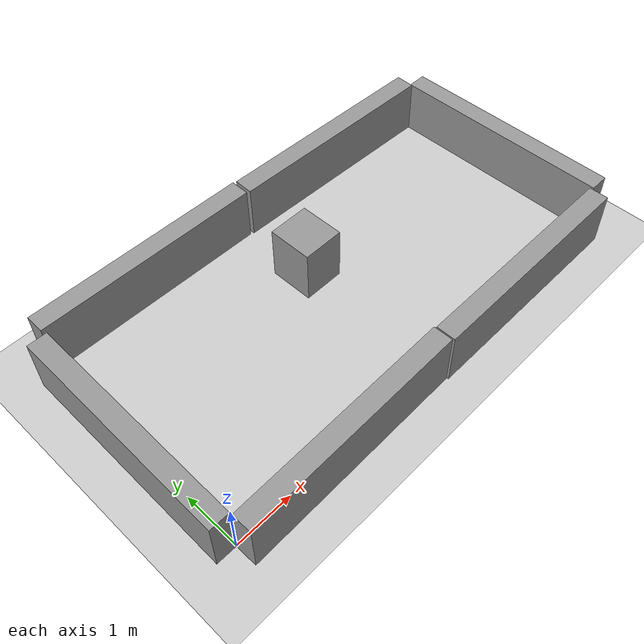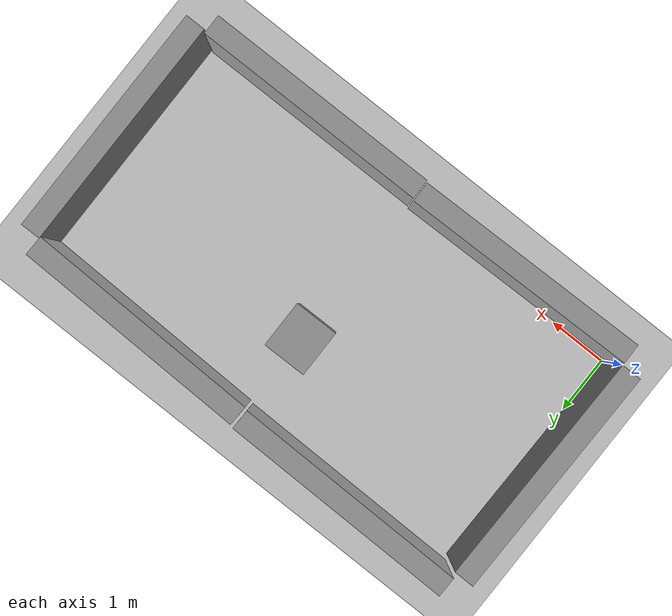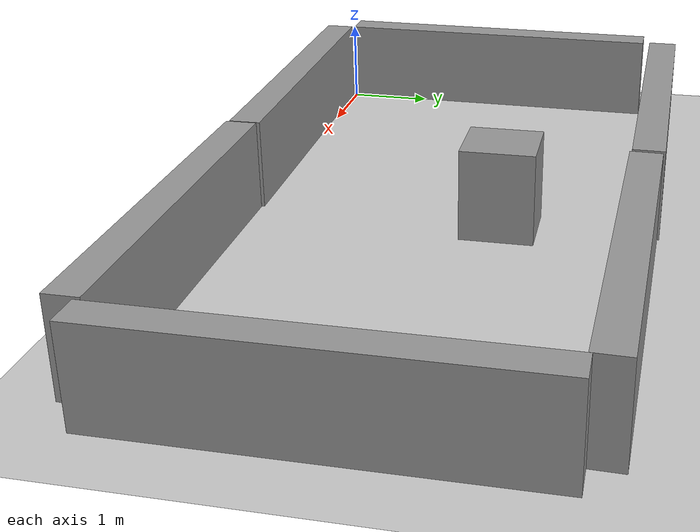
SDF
<sdf version="1.7">
 <world name="default">
  <light name="sun" type="directional">
   <pose>0 0 10 0 -0 0</pose>
   <diffuse>0.8 0.8 0.8 1</diffuse>
   <specular>0.2 0.2 0.2 1</specular>
   <attenuation>
    <range>1000</range>
    <constant>0.9</constant>
    <linear>0.01</linear>
    <quadratic>0.001</quadratic>
   </attenuation>
   <direction>-0.5 0.1 -0.9</direction>
   <spot><inner_angle>0</inner_angle><outer_angle>0</outer_angle><falloff>0</falloff></spot>
  </light>
  <model name="ground_plane">
   <static>1</static>
   <link name="link">
    <collision name="collision">
     <geometry><plane><normal>0 0 1</normal><size>100 100</size></plane></geometry>
     <surface><friction><ode><mu>100</mu><mu2>50</mu2></ode></friction></surface>
    </collision>
    <visual name="visual">
     <cast_shadows>0</cast_shadows>
     <geometry><plane><normal>0 0 1</normal><size>100 100</size></plane></geometry>
     <material>
      <script><uri>file://media/materials/scripts/gazebo.material</uri><name>Gazebo/Grey</name></script>
     </material>
    </visual>
   </link>
  </model>
  <gravity>0 0 -9.8</gravity>
  <magnetic_field>6e-06 2.3e-05 -4.2e-05</magnetic_field>
  <atmosphere type="adiabatic"/>
  <physics type="ode">
   <max_step_size>0.001</max_step_size>
   <real_time_factor>1</real_time_factor>
   <real_time_update_rate>1000</real_time_update_rate>
  </physics>
  <scene><ambient>0.4 0.4 0.4 1</ambient><background>0.7 0.7 0.7 1</background><shadows>1</shadows></scene>
  <spherical_coordinates>
   <surface_model>EARTH_WGS84</surface_model>
   <latitude_deg>0</latitude_deg>
   <longitude_deg>0</longitude_deg>
   <elevation>0</elevation>
   <heading_deg>0</heading_deg>
  </spherical_coordinates>
  <model name="unit_box">
   <pose>4.02741 2.70054 0.500001 2e-06 -0 0.00658</pose>
   <link name="link">
    <inertial>
     <mass>1</mass>
     <inertia>
      <ixx>0.166667</ixx>
      <ixy>0</ixy>
      <ixz>0</ixz>
      <iyy>0.166667</iyy>
      <iyz>0</iyz>
      <izz>0.166667</izz>
     </inertia>
    </inertial>
    <collision name="collision"><geometry><box><size>0.736414 0.793854 1</size></box></geometry></collision>
    <visual name="visual">
     <geometry><box><size>0.736414 0.793854 1</size></box></geometry>
     <material>
      <script><name>Gazebo/Grey</name><uri>file://media/materials/scripts/gazebo.material</uri></script>
     </material>
    </visual>
   </link>
  </model>
  <model name="unit_box_clone">
   <pose>6.04382 4.14374 0.499257 9e-06 -0.000373 -0.023097</pose>
   <link name="link">
    <inertial>
     <mass>1</mass>
     <inertia>
      <ixx>0.166667</ixx>
      <ixy>0</ixy>
      <ixz>0</ixz>
      <iyy>0.166667</iyy>
      <iyz>0</iyz>
      <izz>0.166667</izz>
     </inertia>
    </inertial>
    <collision name="collision"><geometry><box><size>4.00266 0.341391 1</size></box></geometry></collision>
    <visual name="visual">
     <geometry><box><size>4.00266 0.341391 1</size></box></geometry>
     <material>
      <script><name>Gazebo/Grey</name><uri>file://media/materials/scripts/gazebo.material</uri></script>
     </material>
    </visual>
   </link>
  </model>
  <model name="unit_box_clone_0">
   <pose>-0.162638 1.99446 0.499257 9e-06 -0.000373 -1.58031</pose>
   <link name="link">
    <inertial>
     <mass>1</mass>
     <inertia>
      <ixx>0.166667</ixx>
      <ixy>0</ixy>
      <ixz>0</ixz>
      <iyy>0.166667</iyy>
      <iyz>0</iyz>
      <izz>0.166667</izz>
     </inertia>
    </inertial>
    <collision name="collision"><geometry><box><size>4.00266 0.341391 1</size></box></geometry></collision>
    <visual name="visual">
     <geometry><box><size>4.00266 0.341391 1</size></box></geometry>
     <material>
      <script><name>Gazebo/Grey</name><uri>file://media/materials/scripts/gazebo.material</uri></script>
     </material>
    </visual>
   </link>
  </model>
  <model name="unit_box_clone_1">
   <pose>1.99076 -0.183763 0.499257 9e-06 0.000373 0.015633</pose>
   <link name="link">
    <inertial>
     <mass>1</mass>
     <inertia>
      <ixx>0.166667</ixx>
      <ixy>0</ixy>
      <ixz>0</ixz>
      <iyy>0.166667</iyy>
      <iyz>0</iyz>
      <izz>0.166667</izz>
     </inertia>
    </inertial>
    <collision name="collision"><geometry><box><size>4.00266 0.341391 1</size></box></geometry></collision>
    <visual name="visual">
     <geometry><box><size>4.00266 0.341391 1</size></box></geometry>
     <material>
      <script><name>Gazebo/Grey</name><uri>file://media/materials/scripts/gazebo.material</uri></script>
     </material>
    </visual>
   </link>
  </model>
  <model name="unit_box_clone_0_clone">
   <pose>8.21758 1.957 0.499256 9e-06 0.000373 -1.568</pose>
   <link name="link">
    <inertial>
     <mass>1</mass>
     <inertia>
      <ixx>0.166667</ixx>
      <ixy>0</ixy>
      <ixz>0</ixz>
      <iyy>0.166667</iyy>
      <iyz>0</iyz>
      <izz>0.166667</izz>
     </inertia>
    </inertial>
    <collision name="collision"><geometry><box><size>4.00266 0.341391 1</size></box></geometry></collision>
    <visual name="visual">
     <geometry><box><size>4.00266 0.341391 1</size></box></geometry>
     <material>
      <script><name>Gazebo/Grey</name><uri>file://media/materials/scripts/gazebo.material</uri></script>
     </material>
    </visual>
   </link>
  </model>
  <model name="unit_box_clone_clone">
   <pose>6.01354 -0.174417 0.499257 9e-06 0.000373 0.003127</pose>
   <link name="link">
    <inertial>
     <mass>1</mass>
     <inertia>
      <ixx>0.166667</ixx>
      <ixy>0</ixy>
      <ixz>0</ixz>
      <iyy>0.166667</iyy>
      <iyz>0</iyz>
      <izz>0.166667</izz>
     </inertia>
    </inertial>
    <collision name="collision"><geometry><box><size>4.00266 0.341391 1</size></box></geometry></collision>
    <visual name="visual">
     <geometry><box><size>4.00266 0.341391 1</size></box></geometry>
     <material>
      <script><name>Gazebo/Grey</name><uri>file://media/materials/scripts/gazebo.material</uri></script>
     </material>
    </visual>
   </link>
  </model>
  <model name="unit_box_clone_clone_0">
   <pose>1.98732 4.23291 0.499257 -9e-06 0.000373 -0.010304</pose>
   <link name="link">
    <inertial>
     <mass>1</mass>
     <inertia>
      <ixx>0.166667</ixx>
      <ixy>0</ixy>
      <ixz>0</ixz>
      <iyy>0.166667</iyy>
      <iyz>0</iyz>
      <izz>0.166667</izz>
     </inertia>
    </inertial>
    <collision name="collision"><geometry><box><size>4.00266 0.341391 1</size></box></geometry></collision>
    <visual name="visual">
     <geometry><box><size>4.00266 0.341391 1</size></box></geometry>
     <material>
      <script><name>Gazebo/Grey</name><uri>file://media/materials/scripts/gazebo.material</uri></script>
     </material>
    </visual>
   </link>
  </model>
 </world>
</sdf>
